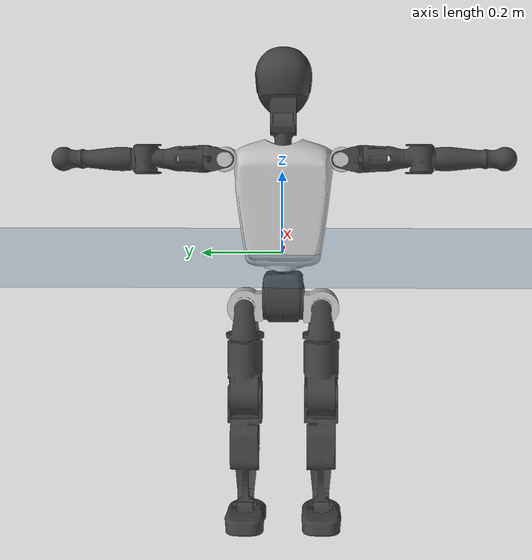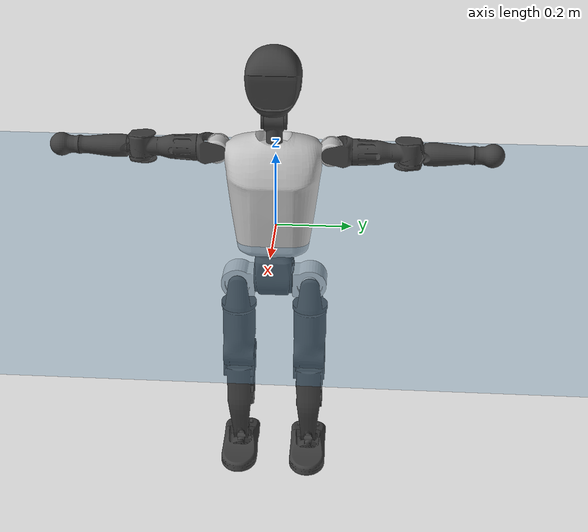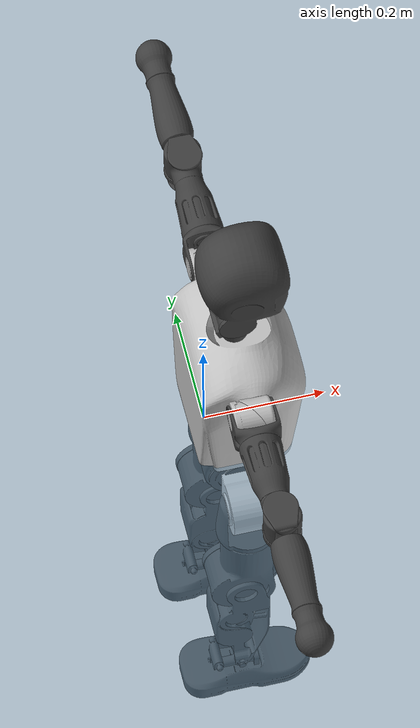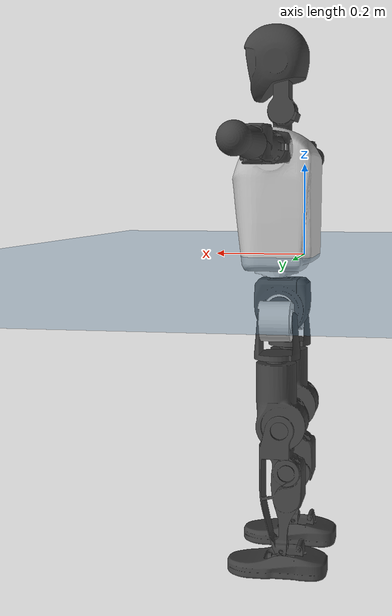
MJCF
<mujoco model="T1">
  <compiler angle="radian" assetdir="assets" balanceinertia="true" inertiafromgeom="false"/>

  <option timestep="0.005" density="1.2" viscosity="2e-05"/>

  <size nkey="1"/>

  <visual>
    <quality shadowsize="8192"/>
    <map shadowclip="0.5"/>
  </visual>

  <default>
    <default class="/">
      <joint armature="0.01" damping="0.01" frictionloss="0.1"/>
      <geom contype="0" conaffinity="0" group="1" solref="-1000 -80"/>
      <site size="0.01 0.005 0.005" group="5"/>
      <general forcelimited="true" biastype="affine" gainprm="25" biasprm="0 -25 -0.6"/>
      <default class="t1">
        <geom rgba="0.25 0.25 0.25 1"/>
        <default class="visual">
          <geom type="mesh" group="2"/>
        </default>
        <default class="collision">
          <geom group="3"/>
        </default>
        <default class="foot">
          <geom size="0.1115 0.05 0.015" type="box" condim="6" group="4" priority="1" solimp="0.015 1 0.015"/>
        </default>
        <default class="reward_collision_sphere">
          <geom group="5" rgba="1 0 0 1"/>
        </default>
      </default>
    </default>
  </default>

  <asset>
    <texture type="skybox" colorspace="auto" name="//unnamed_texture_0" builtin="gradient" rgb1="0.95 0.95 0.95" rgb2="0.95 0.95 0.95" width="100" height="600"/>
    <texture type="2d" colorspace="auto" name="texplane" builtin="checker" rgb1="0.345 0.575 0.748" rgb2="0.345 0.575 0.748" markrgb="1 1 1" width="512" height="512"/>
    <material name="MatPlane" class="/" texture="texplane" texuniform="true" texrepeat="2 2" specular="0.9"/>
    <mesh name="Trunk" class="/" file="Trunk.stl"/>
    <mesh name="H1" class="/" file="H1.stl"/>
    <mesh name="H2" class="/" file="H2.stl"/>
    <mesh name="AL1" class="/" file="AL1.stl"/>
    <mesh name="AL2" class="/" file="AL2.stl"/>
    <mesh name="AL3" class="/" file="AL3.stl"/>
    <mesh name="left_hand_link" class="/" file="left_hand_link.stl"/>
    <mesh name="AR1" class="/" file="AR1.stl"/>
    <mesh name="AR2" class="/" file="AR2.stl"/>
    <mesh name="AR3" class="/" file="AR3.stl"/>
    <mesh name="right_hand_link" class="/" file="right_hand_link.stl"/>
    <mesh name="Waist" class="/" file="Waist.stl"/>
    <mesh name="Hip_Pitch_Left" class="/" file="Hip_Pitch_Left.stl"/>
    <mesh name="Hip_Roll_Left" class="/" file="Hip_Roll_Left.stl"/>
    <mesh name="Hip_Yaw_Left" class="/" file="Hip_Yaw_Left.stl"/>
    <mesh name="Shank_Left" class="/" file="Shank_Left.stl"/>
    <mesh name="Ankle_Cross_Left" class="/" file="Ankle_Cross_Left.stl"/>
    <mesh name="left_foot_link" class="/" file="left_foot_link.stl"/>
    <mesh name="Hip_Pitch_Right" class="/" file="Hip_Pitch_Right.stl"/>
    <mesh name="Hip_Roll_Right" class="/" file="Hip_Roll_Right.stl"/>
    <mesh name="Hip_Yaw_Right" class="/" file="Hip_Yaw_Right.stl"/>
    <mesh name="Shank_Right" class="/" file="Shank_Right.stl"/>
    <mesh name="Ankle_Cross_Right" class="/" file="Ankle_Cross_Right.stl"/>
    <mesh name="right_foot_link" class="/" file="right_foot_link.stl"/>
  </asset>

  <worldbody>
    <geom name="floor" class="/" size="100 100 0.125" type="plane" group="0" material="MatPlane"/>
    <light name="toplight_shadow" class="/" pos="0 0 5" dir="0.0990148 0.0990148 -0.990148" type="directional" ambient="0.04 0.04 0.04" diffuse="0.55 0.55 0.55" specular="0.12 0.12 0.12"/>
    <light name="toplight_fill" class="/" pos="0 0 5" dir="0.0990148 0.0990148 -0.990148" type="directional" castshadow="false" ambient="0.04 0.04 0.04" diffuse="0.3 0.3 0.3" specular="0.08 0.08 0.08"/>
    <body name="trunk" childclass="t1" pos="0.000980459 -0.000969182 0.000202249" quat="1 0.000181704 0.00054633 -1.89175e-05">
      <inertial pos="0.0427869 -0.000950818 0.108608" quat="0.999967 -3.50471e-06 -0.00812073 -0.000181012" mass="8.90966" diaginertia="0.0265428 0.0509528 0.0713478"/>
      <joint name="//unnamed_joint_0" type="free" armature="0" damping="0" frictionloss="0"/>
      <geom name="//unnamed_geom_1" class="visual" rgba="0.76 0.76 0.76 1" mesh="Trunk"/>
      <geom name="//unnamed_geom_2" class="collision" size="0.0684612 0.0912816 0.136922" pos="0.0467231 0 0.125084" type="box"/>
      <geom name="//unnamed_geom_3" class="reward_collision_sphere" size="0.104974" pos="0.0467231 0 0.104237"/>
      <geom name="//unnamed_geom_4" class="reward_collision_sphere" size="0.0136922" pos="0.0467231 0.077976 0"/>
      <geom name="//unnamed_geom_5" class="reward_collision_sphere" size="0.0136922" pos="0.0467231 -0.077976 0"/>
      <geom name="//unnamed_geom_6" class="reward_collision_sphere" size="0.0136922" pos="0.0467231 0.098158 0.187626"/>
      <geom name="//unnamed_geom_7" class="reward_collision_sphere" size="0.0136922" pos="0.0467231 -0.098158 0.187626"/>
      <site name="imu" pos="0.00101826 0.00293963 -0.00238619" size="0.00912816"/>
      <camera name="track" pos="0 -1.83473 0" quat="0.707107 0.707107 0 0" mode="trackcom"/>
      <camera name="ego_camera" pos="0.0950036 0 0.437794" quat="-0.5 -0.5 0.5 0.5"/>
      <body name="H1" pos="0.048955 0.000769754 0.253028" quat="1 -5.2142e-06 2.35236e-06 2.15654e-06">
        <inertial pos="-0.00187782 -0.00244092 0.0600794" quat="0.767973 -0.0181725 -0.00430301 0.64021" mass="0.339866" diaginertia="7.02459e-05 0.000146182 0.0001859"/>
        <joint name="AAHead_yaw" pos="0 0 0" axis="7.83651e-05 0.000388618 1" range="-1.55131 1.56061" armature="0.00886485" damping="0.0111086" frictionloss="0.100516"/>
        <geom name="//unnamed_geom_8" class="visual" mesh="H1"/>
        <body name="H2" pos="-0.00118534 -0.000178391 0.0641068" quat="1 -6.06417e-05 -1.49933e-05 4.32329e-06">
          <inertial pos="0.00537169 0.000955534 0.102979" quat="0.988395 0.108581 -0.0704319 -0.0795271" mass="0.471339" diaginertia="0.00058265 0.00122078 0.00213575"/>
          <joint name="Head_pitch" pos="0 0 0" axis="0.00259982 -0.999997 4.29025e-05" range="-1.22976 0.360162" armature="0.00839071" damping="0.00585263" frictionloss="0.093552"/>
          <geom name="//unnamed_geom_9" class="visual" mesh="H2"/>
          <geom name="//unnamed_geom_10" class="collision" size="0.0730253" pos="0.00778718 0 0.11466"/>
          <geom name="//unnamed_geom_11" class="reward_collision_sphere" size="0.0821534" pos="0.0155744 0 0.104237"/>
        </body>
      </body>
      <body name="AL1" pos="0.0454334 0.0978776 0.229014" quat="1 6.48561e-07 0.000436379 7.52047e-06">
        <inertial pos="1.13895e-05 0.0408404 8.90945e-05" quat="0.504574 0.489696 -0.511219 0.494225" mass="0.403691" diaginertia="0.000391166 0.000833978 0.000365298"/>
        <joint name="Left_Shoulder_Pitch" pos="0 0 0" axis="0.00199407 0.999998 -0.000400959" range="-3.30188 1.20085" armature="0.00921949" damping="0.00706688" frictionloss="0.0896283"/>
        <geom name="//unnamed_geom_12" class="visual" rgba="0.76 0.76 0.76 1" mesh="AL1"/>
        <body name="AL2" pos="0.000551174 0.0436949 0.000958897" quat="1 0.000119019 -1.10288e-05 0.000161074">
          <inertial pos="0.00294723 0.0352937 -0.000274816" quat="0.486919 0.512356 -0.48839 0.511739" mass="0.122384" diaginertia="0.000115806 0.000225884 0.000217925"/>
          <joint name="Left_Shoulder_Roll" pos="0 0 0" axis="-0.999997 -3.04929e-05 0.00257787" stiffness="0.00252468" range="-1.55186 1.72985" armature="0.00914841" damping="0.0039702" frictionloss="0.0888593"/>
          <geom name="//unnamed_geom_13" class="visual" mesh="AL2"/>
          <body name="AL3" pos="0.00155053 0.0555754 -9.89301e-05" quat="1 -2.06373e-05 0.000116923 0.000234136">
            <inertial pos="-0.00204183 0.0785327 -0.000357255" quat="0.705821 0.70839 0.00120347 -0.000331451" mass="0.777601" diaginertia="0.00365069 0.00818173 0.000768543"/>
            <joint name="Left_Elbow_Pitch" pos="0 0 0" axis="-0.000755032 -0.999999 0.000808866" range="-2.27045 2.26908" armature="0.0092988" damping="0.0087721" frictionloss="0.0904976"/>
            <geom name="//unnamed_geom_14" class="visual" mesh="AL3"/>
            <geom name="//unnamed_geom_15" class="collision" size="0.0273845 0.0684612" pos="0 0.0458682 0" quat="0.707105 0.707108 0 0" type="cylinder"/>
            <geom name="//unnamed_geom_16" class="reward_collision_sphere" size="0.0328614"/>
            <body name="left_hand_link" pos="0.00119642 0.135442 -0.000920012" quat="1 5.623e-05 0.000221546 0.000563035">
              <inertial pos="0.000208577 0.100829 0.000247382" quat="0.705767 0.708441 -0.000211097 0.00206032" mass="0.246399" diaginertia="0.00231582 0.00518274 0.000256449"/>
              <joint name="Left_Elbow_Yaw" pos="0 0 0" axis="-0.00290595 -0.00430712 0.999987" range="-2.45251 0.0215" armature="0.0088944" damping="0.0131643" frictionloss="0.0921202"/>
              <geom name="//unnamed_geom_17" class="visual" mesh="left_hand_link"/>
              <geom name="//unnamed_geom_18" class="collision" size="0.0273845 0.0798714" pos="0 0.119257 0" quat="0.707105 0.707108 0 0" type="cylinder"/>
              <geom name="//unnamed_geom_19" class="reward_collision_sphere" size="0.0456408"/>
              <geom name="//unnamed_geom_20" class="reward_collision_sphere" size="0.0319486" pos="0 0.10091 0"/>
              <geom name="//unnamed_geom_21" class="reward_collision_sphere" size="0.0319486" pos="0 0.197233 0"/>
            </body>
          </body>
        </body>
      </body>
      <body name="AR1" pos="0.04357 -0.0980978 0.229045" quat="1 6.74605e-05 0.000379516 -7.15847e-05">
        <inertial pos="-0.00114042 -0.042464 0.00160525" quat="0.502828 0.496995 -0.504922 0.495191" mass="0.407141" diaginertia="0.000395585 0.000830934 0.000363631"/>
        <joint name="Right_Shoulder_Pitch" pos="0 0 0" axis="0.00591477 -0.999982 0.000831211" range="-1.21699 3.30342" armature="0.00870906" damping="0.00643655" frictionloss="0.0932003"/>
        <geom name="//unnamed_geom_22" class="visual" rgba="0.76 0.76 0.76 1" mesh="AR1"/>
        <body name="AR2" pos="-0.000433236 -0.04143 0.00040851" quat="1 -0.000266561 -0.000171671 0.000327648">
          <inertial pos="0.00347909 -0.0351178 0.00110068" quat="0.510363 0.490655 -0.512985 0.485421" mass="0.125029" diaginertia="0.000117943 0.000230129 0.000217251"/>
          <joint name="Right_Shoulder_Roll" pos="0 0 0" axis="-0.999992 -0.00116743 -0.00391045" stiffness="0.00258456" range="-1.74455 1.57344" armature="0.00849886" damping="0.00571334" frictionloss="0.0892083"/>
          <geom name="//unnamed_geom_23" class="visual" mesh="AR2"/>
          <body name="AR3" pos="-0.000743952 -0.0565458 0.000858987" quat="1 -4.98888e-05 0.0002653 -9.09962e-05">
            <inertial pos="0.0015627 -0.0780379 0.00117417" quat="0.707883 0.70633 -6.48737e-05 9.1581e-05" mass="0.775897" diaginertia="0.00361903 0.00832058 0.00077382"/>
            <joint name="Right_Elbow_Pitch" pos="0 0 0" axis="0.000310975 1 -0.000163127" range="-2.2716 2.27522" armature="0.00922854" damping="0.00772755" frictionloss="0.100511"/>
            <geom name="//unnamed_geom_24" class="visual" mesh="AR3"/>
            <geom name="//unnamed_geom_25" class="collision" size="0.0273845 0.0684612" pos="0 -0.0458682 0" quat="0.707105 0.707108 0 0" type="cylinder"/>
            <geom name="//unnamed_geom_26" class="reward_collision_sphere" size="0.0328614"/>
            <body name="right_hand_link" pos="-0.000189745 -0.13445 -0.000716425" quat="1 -2.97726e-05 -1.31484e-05 1.03639e-05">
              <inertial pos="-0.000285475 -0.101125 0.000611633" quat="0.706113 0.708098 0.000659151 -0.0014064" mass="0.252665" diaginertia="0.00238962 0.00539726 0.000273518"/>
              <joint name="Right_Elbow_Yaw" pos="0 0 0" axis="-0.00634043 0.000229069 0.99998" range="0.0127636 2.43479" armature="0.00956931" damping="0.00852731" frictionloss="0.0881338"/>
              <geom name="//unnamed_geom_27" class="visual" mesh="right_hand_link"/>
              <geom name="//unnamed_geom_28" class="collision" size="0.0273845 0.0798714" pos="0 -0.119257 0" quat="0.707105 0.707108 0 0" type="cylinder"/>
              <geom name="//unnamed_geom_29" class="reward_collision_sphere" size="0.0456408"/>
              <geom name="//unnamed_geom_30" class="reward_collision_sphere" size="0.0319486" pos="0 -0.10091 0"/>
              <geom name="//unnamed_geom_31" class="reward_collision_sphere" size="0.0319486" pos="0 -0.197233 0"/>
            </body>
          </body>
        </body>
      </body>
      <body name="Waist" pos="0.0477082 9.58156e-05 -0.120875" quat="0.999999 -0.000597839 0.000565986 0.000603267">
        <inertial pos="8.89457e-05 -0.000433303 0.00795791" quat="0.98426 0.00769513 -0.176556 0.000636409" mass="1.94746" diaginertia="0.0015462 0.00350166 0.00590605"/>
        <joint name="Waist" pos="0 0 0" axis="0.00110195 0.00166048 0.999998" range="-1.56881 1.56504" armature="0.00910184" damping="0.00910227" frictionloss="0.091272"/>
        <geom name="//unnamed_geom_32" class="visual" mesh="Waist"/>
        <body name="Hip_Pitch_Left" pos="0.00129905 0.0964023 0.00114064" quat="1 7.26296e-06 6.28885e-06 -8.65799e-06">
          <inertial pos="0.00220643 -0.00675611 -0.0189149" quat="0.974715 0.222569 0.0198489 -0.000378695" mass="0.775103" diaginertia="0.000505141 0.000946028 0.0015428"/>
          <joint name="Left_Hip_Pitch" pos="0 0 0" axis="0.00239586 0.999997 -0.000166415" stiffness="0.00192605" range="-1.81829 1.5722" armature="0.00881468" damping="0.00809626" frictionloss="0.0915091"/>
          <geom name="//unnamed_geom_33" class="visual" rgba="0.76 0.76 0.76 1" mesh="Hip_Pitch_Left"/>
          <body name="Hip_Roll_Left" pos="-0.000384953 0.000642698 -0.024108" quat="1 -0.000117566 -0.000151771 -3.89746e-05">
            <inertial pos="0.000914685 -0.00182851 -0.0550796" quat="0.707196 -0.00582815 -0.0061149 0.706967" mass="0.292073" diaginertia="0.000491607 0.000963789 0.000648538"/>
            <joint name="Left_Hip_Roll" pos="0 0 0" axis="-0.999981 -0.00606859 -0.00130122" range="-1.57001 0.186467" armature="0.00906534" damping="0.000554272" frictionloss="0.0929089"/>
            <geom name="//unnamed_geom_34" class="visual" mesh="Hip_Roll_Left"/>
            <geom name="//unnamed_geom_35" class="reward_collision_sphere" size="0.0502049"/>
            <body name="Hip_Yaw_Left" pos="-0.000766528 0.000231747 -0.0860977" quat="1 0.000227393 1.70803e-05 4.88945e-05">
              <inertial pos="-0.00497781 -0.000789537 -0.0932746" quat="0.694273 -0.0323097 -0.0302864 0.718348" mass="1.65595" diaginertia="0.00737158 0.0160614 0.00312817"/>
              <joint name="Left_Hip_Yaw" pos="0 0 0" axis="-0.000546127 -0.000257345 -1" range="-1.04282 0.996549" armature="0.00909015" damping="0.0070963" frictionloss="0.0919344"/>
              <geom name="//unnamed_geom_36" class="visual" mesh="Hip_Yaw_Left"/>
              <geom name="//unnamed_geom_37" class="collision" size="0.0456408 0.0730253" type="cylinder"/>
              <body name="Shank_Left" pos="-0.0120088 2.37374e-05 -0.143063" quat="1 7.27962e-05 -5.89802e-05 1.57674e-05">
                <inertial pos="-0.00495339 7.82199e-05 -0.129506" quat="0.997573 0.0040317 -0.0254953 0.0646611" mass="1.31947" diaginertia="0.00990199 0.0219063 0.0022695"/>
                <joint name="Left_Knee_Pitch" pos="0 0 0" axis="-0.00365479 0.99998 -0.00515147" range="-0.0039761 2.34728" armature="0.00909955" damping="0.00734285" frictionloss="0.090898"/>
                <geom name="//unnamed_geom_38" class="visual" mesh="Shank_Left"/>
                <geom name="//unnamed_geom_39" class="collision" size="0.0456408 0.0684612" pos="0 0 -0.125084" type="cylinder"/>
                <geom name="//unnamed_geom_40" class="reward_collision_sphere" size="0.059333"/>
                <body name="Ankle_Cross_Left" pos="0.000595312 -0.000363424 -0.290881" quat="1 -0.000252237 0.000346262 0.000113272">
                  <inertial pos="-0.00478393 0.000168101 -0.00912073" quat="0.44291 0.550898 0.550727 0.443894" mass="0.0559093" diaginertia="8.37348e-06 1.66933e-05 1.37913e-05"/>
                  <joint name="Left_Ankle_Pitch" pos="0 0 0" axis="-0.00215638 0.999997 -0.000736859" range="-0.868481 0.350839" armature="0.0100035" damping="0.013709" frictionloss="0.0915393"/>
                  <geom name="//unnamed_geom_41" class="visual" mesh="Ankle_Cross_Left"/>
                  <body name="left_foot_link" pos="0.000363194 -0.000389983 -0.0119185" quat="1 0.00015329 -0.000935236 0.000251812">
                    <inertial pos="-0.000470018 0.000828842 -0.00986153" quat="0.00372907 0.62297 -0.00467602 0.782223" mass="0.531149" diaginertia="0.00079836 0.00156243 0.00272759"/>
                    <joint name="Left_Ankle_Roll" pos="0 0 0" axis="-0.999926 -0.00196459 -0.0119778" range="-0.452971 0.434799" armature="0.00926764" damping="0.00456512" frictionloss="0.092492"/>
                    <geom name="//unnamed_geom_42" class="visual" mesh="left_foot_link"/>
                    <geom name="left_foot" class="foot" size="0.105696 0.0445009 0.0137449" pos="0.00778718 0 -0.0156355"/>
                    <geom name="//unnamed_geom_44" class="reward_collision_sphere" size="0.0474664" pos="0.00778718 0 -0.0156355"/>
                    <geom name="//unnamed_geom_45" class="reward_collision_sphere" size="0.0273845" pos="0.0739782 -0.0210994 -0.0156355"/>
                    <geom name="//unnamed_geom_46" class="reward_collision_sphere" size="0.0273845" pos="-0.0545103 -0.0210994 -0.0156355"/>
                    <site name="left_foot" class="foot" pos="0.00778718 0 -0.0156355" size="0.00912816"/>
                  </body>
                </body>
              </body>
            </body>
          </body>
        </body>
        <body name="Hip_Pitch_Right" pos="0.00154945 -0.0965412 -0.000966989" quat="1 -3.28545e-05 5.35135e-05 -6.43302e-06">
          <inertial pos="-0.00122817 0.00579205 -0.0178842" quat="0.973665 -0.227397 0.0147728 -0.00691825" mass="0.773954" diaginertia="0.000518539 0.000954575 0.00151858"/>
          <joint name="Right_Hip_Pitch" pos="0 0 0" axis="-0.000195842 -1 0.000163418" range="-1.56599 1.80505" armature="0.00956433" damping="0" frictionloss="0.0867823"/>
          <geom name="//unnamed_geom_47" class="visual" rgba="0.76 0.76 0.76 1" mesh="Hip_Pitch_Right"/>
          <body name="Hip_Roll_Right" pos="-0.000851977 0.000548468 -0.021992" quat="1 -2.87268e-05 6.9989e-06 -3.9102e-05">
            <inertial pos="0.001255 -0.000942121 -0.0558613" quat="0.705258 -0.00927199 -0.00407425 0.708878" mass="0.287614" diaginertia="0.000506578 0.000988691 0.000630846"/>
            <joint name="Right_Hip_Roll" pos="0 0 0" axis="-0.999994 -0.00171663 -0.00311735" range="-0.208703 1.56862" armature="0.00912769" damping="0.00402242" frictionloss="0.0908291"/>
            <geom name="//unnamed_geom_48" class="visual" mesh="Hip_Roll_Right"/>
            <geom name="//unnamed_geom_49" class="reward_collision_sphere" size="0.0502049"/>
            <body name="Hip_Yaw_Right" pos="-0.00122097 -0.000244416 -0.0864763" quat="1 9.86812e-05 0.000139837 -7.82002e-06">
              <inertial pos="-0.00572268 -9.28492e-05 -0.0935879" quat="0.713792 -0.0320411 -0.0346157 0.698767" mass="1.63849" diaginertia="0.00749558 0.0164488 0.00324866"/>
              <joint name="Right_Hip_Yaw" pos="0 0 0" axis="0.00159494 -0.00134667 -0.999998" stiffness="0.00417804" range="-0.997582 1.00853" armature="0.009291" damping="0.0181396" frictionloss="0.095301"/>
              <geom name="//unnamed_geom_50" class="visual" mesh="Hip_Yaw_Right"/>
              <geom name="//unnamed_geom_51" class="collision" size="0.0456408 0.0730253" type="cylinder"/>
              <body name="Shank_Right" pos="-0.0116292 5.18165e-05 -0.141312" quat="1 0.000325873 -4.06206e-05 -7.89787e-05">
                <inertial pos="-0.00520903 -0.000901746 -0.128171" quat="0.999244 0.000322251 -0.0233478 -0.031079" mass="1.37968" diaginertia="0.0102024 0.0227434 0.00238563"/>
                <joint name="Right_Knee_Pitch" pos="0 0 0" axis="0.0017992 -0.99999 0.0040686" range="-2.36654 -0.00858686" armature="0.00930416" damping="0.00449243" frictionloss="0.0892032"/>
                <geom name="//unnamed_geom_52" class="visual" mesh="Shank_Right"/>
                <geom name="//unnamed_geom_53" class="collision" size="0.0456408 0.0684612" pos="0 0 -0.125084" type="cylinder"/>
                <geom name="//unnamed_geom_54" class="reward_collision_sphere" size="0.059333"/>
                <body name="Ankle_Cross_Right" pos="0.00092321 -0.00109515 -0.292355" quat="1 4.21679e-07 -4.63848e-07 5.9415e-06">
                  <inertial pos="-0.00280405 -0.000474645 -0.00833612" quat="0.443163 0.551159 0.551066 0.442895" mass="0.055802" diaginertia="8.42853e-06 1.6726e-05 1.41631e-05"/>
                  <joint name="Right_Ankle_Pitch" pos="0 0 0" axis="0.00391176 -0.999991 -0.00191282" range="-0.358618 0.863129" armature="0.00911531" damping="0.0037025" frictionloss="0.0921415"/>
                  <geom name="//unnamed_geom_55" class="visual" mesh="Ankle_Cross_Right"/>
                  <body name="right_foot_link" pos="-0.000482361 -0.000212251 -0.0100305" quat="1 -6.30168e-06 1.77269e-05 -5.67625e-05">
                    <inertial pos="-9.24916e-05 0.000750083 -0.0114085" quat="-0.00218543 0.622524 0.00337327 0.78259" mass="0.513664" diaginertia="0.000757669 0.00151341 0.00256542"/>
                    <joint name="Right_Ankle_Roll" pos="0 0 0" axis="-0.999989 -0.00471116 -0.000796359" stiffness="0.000331958" range="-0.450877 0.470045" armature="0.00813034" damping="0" frictionloss="0.0914088"/>
                    <geom name="//unnamed_geom_56" class="visual" mesh="right_foot_link"/>
                    <geom name="right_foot" class="foot" size="0.0977727 0.0449144 0.0141532" pos="0.00778718 0 -0.0156355"/>
                    <geom name="//unnamed_geom_58" class="reward_collision_sphere" size="0.0365126"/>
                    <geom name="//unnamed_geom_59" class="reward_collision_sphere" size="0.0273845" pos="0.00778718 0 -0.0156355"/>
                    <geom name="//unnamed_geom_60" class="reward_collision_sphere" size="0.0273845" pos="0.0739782 0.0210994 -0.0156355"/>
                    <geom name="//unnamed_geom_61" class="reward_collision_sphere" size="0.0273845" pos="-0.0545103 0.0210994 -0.0156355"/>
                    <site name="right_foot" class="foot" pos="0.00778718 0 -0.0156355" size="0.00912816"/>
                  </body>
                </body>
              </body>
            </body>
          </body>
        </body>
      </body>
    </body>
  </worldbody>

  <contact>
    <pair class="/" geom1="floor" geom2="left_foot" name="//unnamed_contact_0"/>
    <pair class="/" geom1="floor" geom2="right_foot" name="//unnamed_contact_1"/>
  </contact>

  <actuator>
    <general name="AAHead_yaw" class="/" joint="AAHead_yaw" forcerange="-6.36169 6.36169" gainprm="23.3595" biasprm="0 -23.3595 -0.525864"/>
    <general name="Head_pitch" class="/" joint="Head_pitch" forcerange="-6.32324 6.32324" gainprm="23.3595" biasprm="0 -23.3595 -0.525864"/>
    <general name="Left_Shoulder_Pitch" class="/" joint="Left_Shoulder_Pitch" forcerange="-15.1174 15.1174" gainprm="23.3595" biasprm="0 -23.3595 -0.525864"/>
    <general name="Left_Shoulder_Roll" class="/" joint="Left_Shoulder_Roll" forcerange="-15.6459 15.6459" gainprm="23.3595" biasprm="0 -23.3595 -0.525864"/>
    <general name="Left_Elbow_Pitch" class="/" joint="Left_Elbow_Pitch" forcerange="-16.3575 16.3575" gainprm="23.3595" biasprm="0 -23.3595 -0.525864"/>
    <general name="Left_Elbow_Yaw" class="/" joint="Left_Elbow_Yaw" forcerange="-16.6273 16.6273" gainprm="23.3595" biasprm="0 -23.3595 -0.525864"/>
    <general name="Right_Shoulder_Pitch" class="/" joint="Right_Shoulder_Pitch" forcerange="-16.4779 16.4779" gainprm="23.3595" biasprm="0 -23.3595 -0.525864"/>
    <general name="Right_Shoulder_Roll" class="/" joint="Right_Shoulder_Roll" forcerange="-16.4725 16.4725" gainprm="23.3595" biasprm="0 -23.3595 -0.525864"/>
    <general name="Right_Elbow_Pitch" class="/" joint="Right_Elbow_Pitch" forcerange="-16.5412 16.5412" gainprm="23.3595" biasprm="0 -23.3595 -0.525864"/>
    <general name="Right_Elbow_Yaw" class="/" joint="Right_Elbow_Yaw" forcerange="-16.7189 16.7189" gainprm="23.3595" biasprm="0 -23.3595 -0.525864"/>
    <general name="Waist" class="/" joint="Waist" forcerange="-26.8591 26.8591" gainprm="23.3595" biasprm="0 -23.3595 -0.525864"/>
    <general name="Left_Hip_Pitch" class="/" joint="Left_Hip_Pitch" forcerange="-41.8283 41.8283" gainprm="23.3595" biasprm="0 -23.3595 -0.525864"/>
    <general name="Left_Hip_Roll" class="/" joint="Left_Hip_Roll" forcerange="-26.3821 26.3821" gainprm="23.3595" biasprm="0 -23.3595 -0.525864"/>
    <general name="Left_Hip_Yaw" class="/" joint="Left_Hip_Yaw" forcerange="-28.0774 28.0774" gainprm="23.3595" biasprm="0 -23.3595 -0.525864"/>
    <general name="Left_Knee_Pitch" class="/" joint="Left_Knee_Pitch" forcerange="-55.1791 55.1791" gainprm="23.3595" biasprm="0 -23.3595 -0.525864"/>
    <general name="Left_Ankle_Pitch" class="/" joint="Left_Ankle_Pitch" forcerange="-18.2221 18.2221" gainprm="23.3595" biasprm="0 -23.3595 -0.525864"/>
    <general name="Left_Ankle_Roll" class="/" joint="Left_Ankle_Roll" forcerange="-13.277 13.277" gainprm="23.3595" biasprm="0 -23.3595 -0.525864"/>
    <general name="Right_Hip_Pitch" class="/" joint="Right_Hip_Pitch" forcerange="-42.9113 42.9113" gainprm="23.3595" biasprm="0 -23.3595 -0.525864"/>
    <general name="Right_Hip_Roll" class="/" joint="Right_Hip_Roll" forcerange="-29.3087 29.3087" gainprm="23.3595" biasprm="0 -23.3595 -0.525864"/>
    <general name="Right_Hip_Yaw" class="/" joint="Right_Hip_Yaw" forcerange="-27.4157 27.4157" gainprm="23.3595" biasprm="0 -23.3595 -0.525864"/>
    <general name="Right_Knee_Pitch" class="/" joint="Right_Knee_Pitch" forcerange="-53.0302 53.0302" gainprm="23.3595" biasprm="0 -23.3595 -0.525864"/>
    <general name="Right_Ankle_Pitch" class="/" joint="Right_Ankle_Pitch" forcerange="-17.0179 17.0179" gainprm="23.3595" biasprm="0 -23.3595 -0.525864"/>
    <general name="Right_Ankle_Roll" class="/" joint="Right_Ankle_Roll" forcerange="-13.9869 13.9869" gainprm="23.3595" biasprm="0 -23.3595 -0.525864"/>
  </actuator>

  <sensor>
    <gyro site="imu" name="imu_angular_velocity"/>
    <velocimeter site="imu" name="imu_linear_velocity"/>
    <framelinvel objtype="site" objname="left_foot" name="left_foot_global_linear_velocity"/>
    <framelinvel objtype="site" objname="right_foot" name="right_foot_global_linear_velocity"/>
  </sensor>

  <keyframe>
    <key name="home" qpos="0 0 0.6385 1 0 0 0 0 0 0 1.4 0 -0.4 0 -1.4 0 0.4 0 -0.4 0 0 0.8 -0.4 0 0.4 0 0 -0.8 0.4 0"/>
  </keyframe>
</mujoco>
